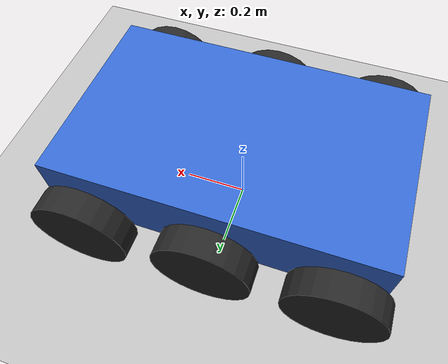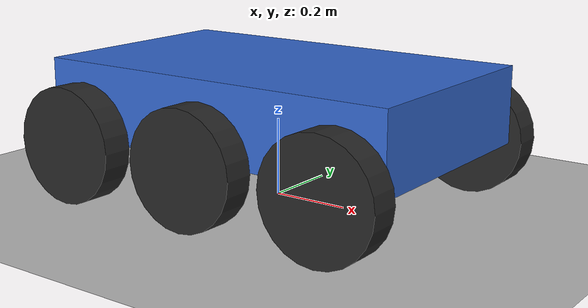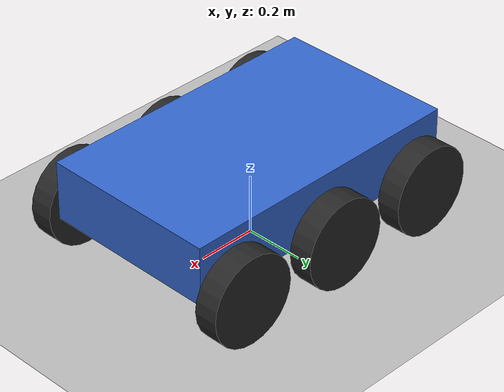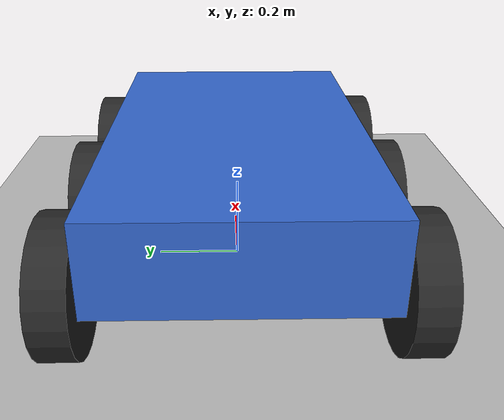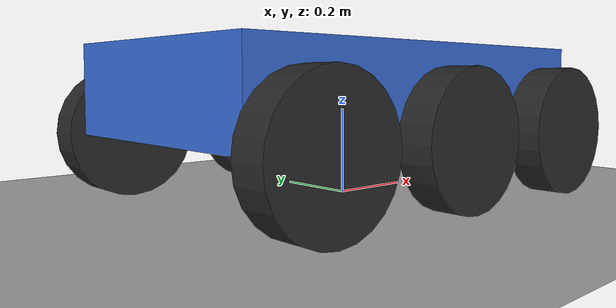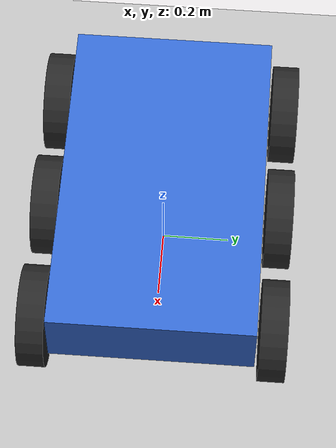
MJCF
<mujoco model="six_wheel_skidsteer">

  <option timestep="0.01" integrator="implicitfast" gravity="0 0 -9.81"/>

  <default>
    <joint damping="0.1" armature="0.01"/>
    <geom friction="1.0 0.005 0.001" condim="3" contype="1" conaffinity="1"/>
  </default>

  <asset>
    <texture name="grid" type="2d" builtin="checker"
             rgb1="0.85 0.85 0.85" rgb2="0.6 0.6 0.6"
             width="512" height="512"/>
    <material name="grid" texture="grid" texrepeat="5 5" reflectance="0.2"/>
    <material name="chassis_mat" rgba="0.2 0.4 0.8 1"/>
    <material name="wheel_mat"   rgba="0.15 0.15 0.15 1"/>
  </asset>

  <worldbody>

    <light diffuse="0.8 0.8 0.8" pos="0 0 10" dir="0 0 -1" castshadow="false"/>

    <!-- Ground plane -->
    <geom name="floor" type="plane" size="40 40 0.1" material="grid"
          contype="1" conaffinity="1"/>

    <!-- ─── Chassis ─────────────────────────────────────────────────── -->
    <!-- pos Z = wheel_radius(0.15) + chassis_half_height(0.10) = 0.25  -->
    <body name="chassis" pos="0 0 0.25">
      <freejoint name="chassis_joint"/>
      <geom name="chassis_geom" type="box" size="0.5 0.3 0.1"
            material="chassis_mat" mass="20"/>

      <!-- site at chassis centre for pose/velocity queries -->
      <site name="imu" pos="0 0 0" size="0.02"/>

      <!-- ─── Left wheels (y = +0.35) ─────────────────────────────── -->
      <!-- zaxis="0 1 0": align cylinder's long axis with world Y (sideways).
           size = "radius  half_width" = "0.15  0.04"
           Joint hinge axis="0 1 0" matches — both rotate around Y.         -->

      <body name="wheel_fl" pos=" 0.38  0.35 -0.10">
        <joint name="wheel_fl_joint" type="hinge" axis="0 1 0" limited="false"/>
        <geom  name="wheel_fl_geom" type="cylinder" size="0.15 0.04"
               zaxis="0 1 0" material="wheel_mat" mass="1.5"
               friction="0.8 0.005 0.001"/>
      </body>

      <body name="wheel_ml" pos=" 0.00  0.35 -0.10">
        <joint name="wheel_ml_joint" type="hinge" axis="0 1 0" limited="false"/>
        <geom  name="wheel_ml_geom" type="cylinder" size="0.15 0.04"
               zaxis="0 1 0" material="wheel_mat" mass="1.5"
               friction="0.8 0.005 0.001"/>
      </body>

      <body name="wheel_rl" pos="-0.38  0.35 -0.10">
        <joint name="wheel_rl_joint" type="hinge" axis="0 1 0" limited="false"/>
        <geom  name="wheel_rl_geom" type="cylinder" size="0.15 0.04"
               zaxis="0 1 0" material="wheel_mat" mass="1.5"
               friction="0.8 0.005 0.001"/>
      </body>

      <!-- ─── Right wheels (y = -0.35) ────────────────────────────── -->

      <body name="wheel_fr" pos=" 0.38 -0.35 -0.10">
        <joint name="wheel_fr_joint" type="hinge" axis="0 1 0" limited="false"/>
        <geom  name="wheel_fr_geom" type="cylinder" size="0.15 0.04"
               zaxis="0 1 0" material="wheel_mat" mass="1.5"
               friction="0.8 0.005 0.001"/>
      </body>

      <body name="wheel_mr" pos=" 0.00 -0.35 -0.10">
        <joint name="wheel_mr_joint" type="hinge" axis="0 1 0" limited="false"/>
        <geom  name="wheel_mr_geom" type="cylinder" size="0.15 0.04"
               zaxis="0 1 0" material="wheel_mat" mass="1.5"
               friction="0.8 0.005 0.001"/>
      </body>

      <body name="wheel_rr" pos="-0.38 -0.35 -0.10">
        <joint name="wheel_rr_joint" type="hinge" axis="0 1 0" limited="false"/>
        <geom  name="wheel_rr_geom" type="cylinder" size="0.15 0.04"
               zaxis="0 1 0" material="wheel_mat" mass="1.5"
               friction="0.8 0.005 0.001"/>
      </body>

    </body>
  </worldbody>

  <actuator>
    <velocity name="act_fl" joint="wheel_fl_joint" kv="85"/>
    <velocity name="act_ml" joint="wheel_ml_joint" kv="85"/>
    <velocity name="act_rl" joint="wheel_rl_joint" kv="85"/>
    <velocity name="act_fr" joint="wheel_fr_joint" kv="85"/>
    <velocity name="act_mr" joint="wheel_mr_joint" kv="85"/>
    <velocity name="act_rr" joint="wheel_rr_joint" kv="85"/>
  </actuator>

</mujoco>
